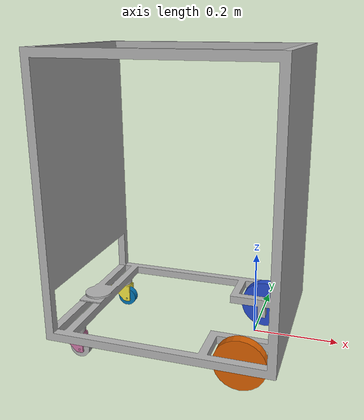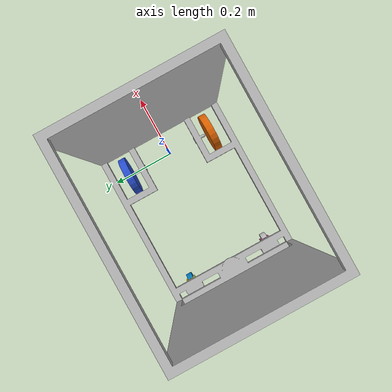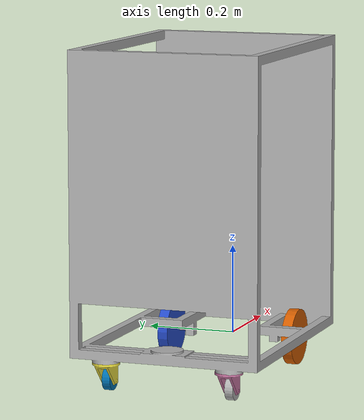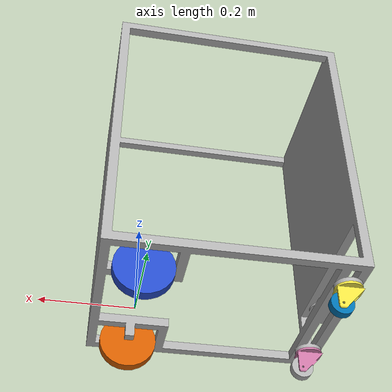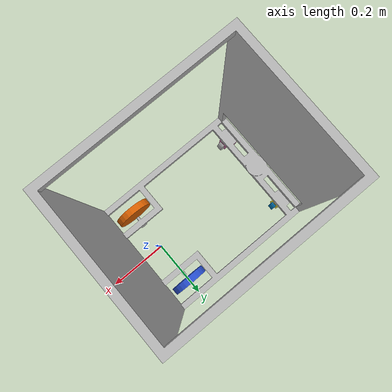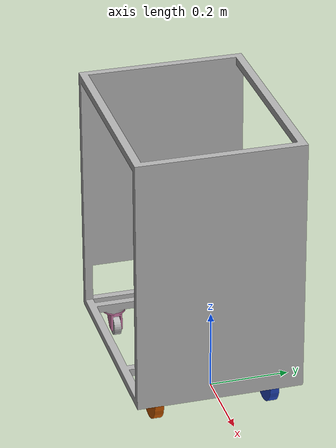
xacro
<?xml version="1.0"?>
<robot xmlns:xacro="htpp://www.ros.org/wiki/xacro">

    <xacro:include filename="inertial_macros.xacro"/>
    <material name="silver">
        <color rgba="0.700 0.700 0.700 1.000"/>
    </material>

    <material name="orange">
        <color rgba="1.000 0.300 0.100 1.000"/>
    </material>

    <material name="blue">
        <color rgba="0.200 0.200 1.000 1.000"/>
    </material>

    <material name="black">
        <color rgba="0.000 0.000 0.000 1.000"/>
    </material>

    <material name="yellow">
        <color rgba="1.000 0.600 0.000 1.000"/>
    </material>

    <!-- BASE LINK -->
    <link name="base_link">

    </link>

    <!-- CHASSIS LINK -->
    <joint name="chassis_joint" type="fixed">
        <parent link="base_link"/>
        <child link="chassis"/>
        <origin xyz="-0.452 0 0"/>
    </joint>

    <link name="chassis">
        <visual>
            <origin xyz="0.272 0 0.016"/>
            <geometry>
                <mesh filename="file://$(find my_diff_drive_bot)/meshes/chassis_link.stl" scale="0.001 0.001 0.001"/>
            </geometry>
            <material name="silver"/>
        </visual>

        <collision>
            <origin xyz="0.272 0 0.016"/>
            <geometry>
                <mesh filename="file://$(find my_diff_drive_bot)/meshes/chassis_link.stl" scale="0.001 0.001 0.001"/>
            </geometry>
            <material name="silver"/>
        </collision>

        <xacro:inertial_box mass="10.0" x="0.544" y="0.422" z="0.656">
            <origin xyz="0.272 0 0.328" rpy="0 0 0"/>
        </xacro:inertial_box>
    </link>

    <gazebo reference="chassis">
        <material>Gazebo/Yellow</material>

    </gazebo>

    <!-- LEFT WHEEL LINK -->
    <joint name="left_wheel_joint" type="continuous">
        <parent link="base_link"/>
        <child link="left_wheel"/>
        <origin xyz="0 0.148 0" rpy="-${pi/2} 0 0"/>
        <axis xyz="0 0 1"/>
    </joint>

    <link name="left_wheel">
        <visual>
            <geometry>
                <cylinder radius="0.0625" length="0.023"/>
            </geometry>
            <materaial name="black"/>
        </visual>

        <collision>
            <geometry>
                <cylinder radius="0.0625" length="0.023"/>
            </geometry>
            <materaial name="black"/>
        </collision>

        <xacro:inertial_cylinder mass="0.15" length="0.023" radius="0.0625">
            <origin xyz="0 0 0" rpy="0 0 0"/>
        </xacro:inertial_cylinder>

    </link>

    <gazebo reference="left_wheel">
        <material>Gazebo/Blue</material>
    </gazebo>

    <!-- LEFT CASTER WHEEL LINK -->

    <joint name="left_caster_joint" type="continuous">
        <parent link="base_link"/>
        <child link="left_caster_link"/>
        <origin xyz="-0.420 0.139 0.007" rpy="-${pi} 0 0"/>
        <axis xyz="0 0 1"/>
    </joint>

    <link name="left_caster_link">
        <materaial name="black"/>
        <visual>
            <origin xyz="0 0 0" rpy="-${pi} 0 0"/>
            <geometry>
                <mesh filename="file://$(find my_diff_drive_bot)/meshes/caster_link.stl" scale="0.001 0.001 0.001"/>
            </geometry>

        </visual>

        <collision>
            <origin xyz="0 0 0" rpy="-${pi} 0 0"/>
            <geometry>
                <mesh filename="file://$(find my_diff_drive_bot)/meshes/caster_link.stl" scale="0.001 0.001 0.001"/>
            </geometry>
            <materaial name="black"/>
        </collision>

        <xacro:inertial_cylinder mass="0.1" length="0.090" radius="0.03">
            <origin xyz="0 0 0" rpy="0 0 0"/>
        </xacro:inertial_cylinder>

    </link>

    <!-- LEFT CASTER WHEEL -->
    <joint name="left_caster_wheel_joint" type="continuous">
        <parent link="left_caster_link"/>
        <child link="left_caster_wheel"/>
        <origin xyz="0.02 0 0.04" rpy="-${pi/2} 0 0"/>
        <axis xyz="0 0 1"/>

    </joint>

    <link name="left_caster_wheel">
        <visual>
            <geometry>
                <cylinder radius="0.025" length="0.018"/>
            </geometry>
        </visual>

        <collision>
            <geometry>
                <cylinder radius="0.025" length="0.018"/>
            </geometry>
        </collision>

        <xacro:inertial_cylinder mass="0.1" length="0.018" radius="0.025">
            <origin xyz="0 0 0" rpy="0 0 0"/>
        </xacro:inertial_cylinder>
    </link>

    <!-- RIGHT WHEEL LINK -->
    <joint name="right_wheel_joint" type="continuous">
        <parent link="base_link"/>
        <child link="right_wheel"/>
        <origin xyz="0 -0.148 0" rpy="${pi/2} 0 0"/>
        <axis xyz="0 0 -1"/>
    </joint>

    <link name="right_wheel">
        <visual>
            <geometry>
                <cylinder radius="0.0625" length="0.023"/>
            </geometry>
            <materaial name="black"/>
        </visual>

        <collision>
            <geometry>
                <cylinder radius="0.0625" length="0.023"/>
            </geometry>
            <materaial name="black"/>
        </collision>

        <xacro:inertial_cylinder mass="0.15" length="0.023" radius="0.0625">
            <origin xyz="0 0 0" rpy="0 0 0"/>
        </xacro:inertial_cylinder>
    </link>

      <!-- RIGHT CASTER WHEEL LINK -->

      <joint name="right_caster_joint" type="continuous">
        <parent link="base_link"/>
        <child link="right_caster_link"/>
        <origin xyz="-0.420 -0.139 0.007" rpy="-${pi} 0 0"/>
        <axis xyz="0 0 1"/>
    </joint>

    <link name="right_caster_link">
        <materaial name="black"/>
        <visual>
            <origin xyz="0 0 0" rpy="-${pi} 0 0"/>
            <geometry>
                <mesh filename="file://$(find my_diff_drive_bot)/meshes/caster_link.stl" scale="0.001 0.001 0.001"/>
            </geometry>

        </visual>

        <collision>
            <origin xyz="0 0 0" rpy="-${pi} 0 0"/>
            <geometry>
                <mesh filename="file://$(find my_diff_drive_bot)/meshes/caster_link.stl" scale="0.001 0.001 0.001"/>
            </geometry>
            <materaial name="black"/>
        </collision>

        <xacro:inertial_cylinder mass="0.1" length="0.090" radius="0.03">
            <origin xyz="0 0 0" rpy="0 0 0"/>
        </xacro:inertial_cylinder>

    </link>

    <!-- RIGHT CASTER WHEEL -->
    <joint name="right_caster_wheel_joint" type="continuous">
        <parent link="right_caster_link"/>
        <child link="right_caster_wheel"/>
        <origin xyz="0.02 0 0.04" rpy="-${pi/2} 0 0"/>
        <axis xyz="0 0 1"/>

    </joint>

    <link name="right_caster_wheel">
        <visual>
            <geometry>
                <cylinder radius="0.025" length="0.018"/>
            </geometry>
        </visual>

        <collision>
            <geometry>
                <cylinder radius="0.025" length="0.018"/>
            </geometry>
        </collision>

        <xacro:inertial_cylinder mass="0.1" length="0.018" radius="0.025">
            <origin xyz="0 0 0" rpy="0 0 0"/>
        </xacro:inertial_cylinder>
    </link>

</robot>
